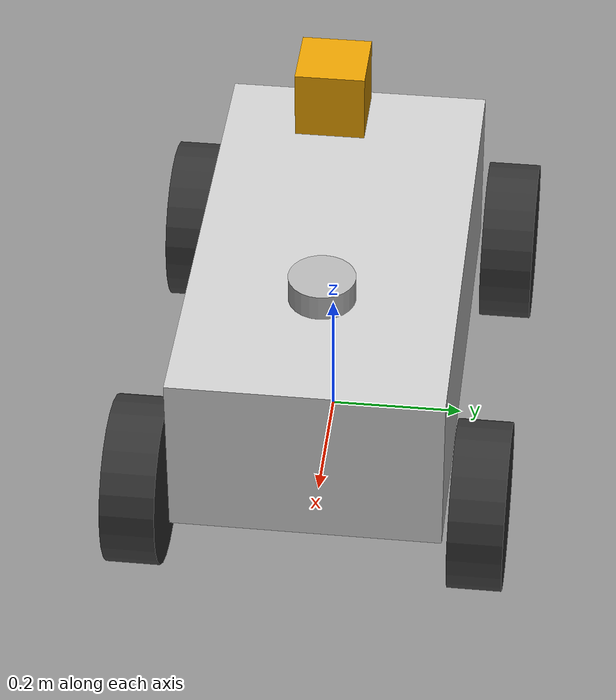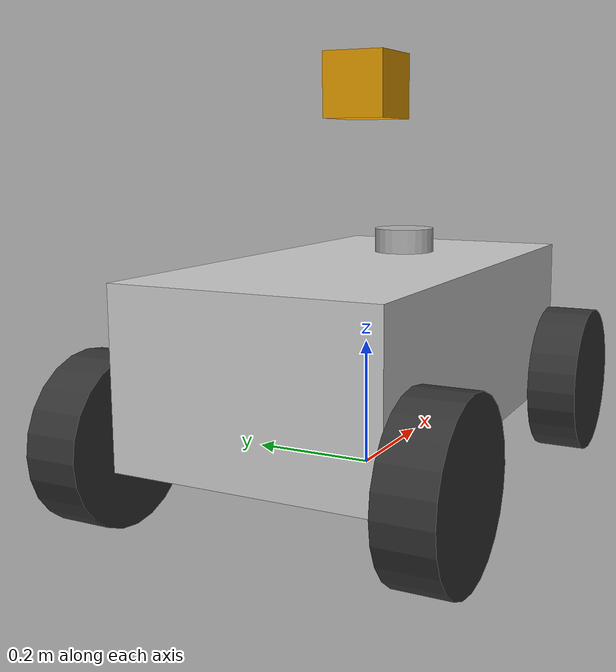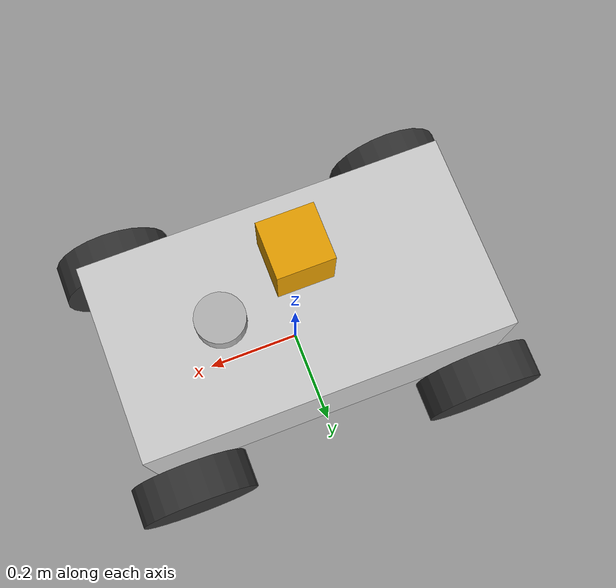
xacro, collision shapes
<?xml version="1.0"?>
<robot xmlns:xacro="http://www.ros.org/wiki/xacro" name="d4zbot">

    <!-- INCLUDED URDF/XACRO FILES -->
    <xacro:include filename="$(find d4zbot_description)/urdf/materials.urdf.xacro"/>
    <xacro:include filename="$(find d4zbot_description)/urdf/wheel.urdf.xacro"/>
    <xacro:include filename="$(find d4zbot_description)/urdf/base.urdf.xacro"/>
    <xacro:include filename="$(find d4zbot_description)/urdf/sensors/hokuyo.urdf.xacro"/>
    <xacro:include filename="$(find d4zbot_description)/urdf/sensors/kinect.urdf.xacro"/>
    <xacro:include filename="$(find d4zbot_description)/urdf/sensors/imu.urdf.xacro"/>

    <!-- PROPERTIES -->
    <xacro:property name="PI" value="3.14159"/>

    <!-- Extras -->
    <xacro:arg name="robot_namespace" default="$(optenv ROBOT_NAMESPACE /)" />

    <!-- D4ZBOT MACROS -->
    <xacro:d4zbot_base/>
    <xacro:d4zbot_wheel wheel_prefix="front_left" x="0.31648" y="0.25125" z="-0.10178" friction_coeff="0.6"/>
    <xacro:d4zbot_wheel wheel_prefix="front_right" x="0.31648" y="-0.25125" z="-0.10178" friction_coeff="0.6"/>
    <xacro:d4zbot_wheel wheel_prefix="rear_left" x="-0.31648" y="0.25125" z="-0.10178" friction_coeff="0.15"/>
    <xacro:d4zbot_wheel wheel_prefix="rear_right" x="-0.31648" y="-0.25125" z="-0.10178" friction_coeff="0.15"/>
    <xacro:d4zbot_hokuyo/>
    <xacro:d4zbot_kinect/>
    <xacro:d4zbot_imu/>

    <!-- PLUGINS -->
    <gazebo>
        <plugin name="gazebo_ros_control" filename="libgazebo_ros_control.so">
          <robotNamespace>$(arg robot_namespace)</robotNamespace>
          <legacyModeNS>true</legacyModeNS>
        </plugin>
    </gazebo>

</robot>

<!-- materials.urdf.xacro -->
<robot xmlns:xacro="http://www.ros.org/wiki/xacro">

    <material name="dark_grey"><color rgba="0.2 0.2 0.2 1.0" /></material>
    <material name="medium_grey"><color rgba="0.6 0.6 0.6 1.0" /></material>
    <material name="light_grey"><color rgba="0.8 0.8 0.8 1.0" /></material>
    <material name="yellow"><color rgba="0.8 0.8 0.0 1.0" /></material>
    <material name="black"><color rgba="0.15 0.15 0.15 1.0" /></material>
    <material name="white"><color rgba="1.0 1.0 1.0 1.0" /></material>
    <material name="red"><color rgba="1.0 0.0 0.0 1.0" /></material>

</robot>

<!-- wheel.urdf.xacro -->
<robot xmlns:xacro="http://www.ros.org/wiki/xacro" name="d4zbot_wheel">

    <xacro:macro name="d4zbot_wheel" params="wheel_prefix x y z friction_coeff">

    <!-- WHEEL LINK -->
        <link name="${wheel_prefix}_link">

            <visual>
                <origin xyz="${-x} ${-y} ${-z}" rpy="0.0 0.0 0.0"/>
                <geometry>
                    <mesh filename="package://d4zbot_description/meshes/${wheel_prefix}_wheel.STL"/>
                </geometry>
                <material name="dark_grey"/>
            </visual>

            <collision>
                <origin xyz="0 0 0" rpy="${PI/2} 0.0 0.0"/>
                <geometry>
                    <cylinder radius="0.124" length="0.08"/>
                </geometry>
            </collision>

            <inertial>
				<mass value="3.07" />
				<origin xyz="0 0 0" />
				<inertia  ixx="0.015922" ixy="0" ixz="0" iyy="0.028794" iyz="0" izz="0.015922" />
			</inertial>
    </link>

    <!-- JOINT -->
    <joint name="${wheel_prefix}_joint" type="continuous">
        <parent link="base_link"/>
        <child link="${wheel_prefix}_link"/>
        <axis xyz="0 1 0" rpy="0 0 0" />
        <origin xyz="${x} ${y} ${z}" rpy="0.0 0.0 0.0"/>
    </joint>

    <!-- GAZEBO -->
    <gazebo reference="${wheel_prefix}_link">
        <mu1 value="${friction_coeff}"/>
        <mu2 value="${friction_coeff}"/>
        <kp value="10000000.0" />
        <kd value="1.0" />
        <fdir1 value="1 0 0"/>
        <material>
            Gazebo/DarkGrey
        </material>
    </gazebo>

    <!-- TRANSMISSION -->
    <transmission name="${wheel_prefix}_wheel_trans" type="SimpleTransmission">
        <type>transmission_interface/SimpleTransmission</type>
        <actuator name="${wheel_prefix}_wheel_motor">
            <mechanicalReduction>1</mechanicalReduction>
        </actuator>
        <joint name="${wheel_prefix}_joint">
            <hardwareInterface>hardware_interface/VelocityJointInterface</hardwareInterface>
        </joint>
    </transmission>

    </xacro:macro>

</robot>

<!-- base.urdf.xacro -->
<robot xmlns:xacro="http://www.ros.org/wiki/xacro" name="d4zbot_base">

    <xacro:macro name="d4zbot_base">

        <!-- BASE FOOTPRINT -->
        <link name="base_footprint"/>

        <joint name="base_footprint_joint" type="fixed">
            <origin xyz="0 0 0.2" rpy="0 0 0" />
            <parent link="base_footprint" />
            <child link="base_link" />
        </joint>

        <!-- BASE LINK -->
        <link name="base_link">
            <visual>
                <origin xyz="0 0 0" rpy="0 0 0" />
                <geometry>
                    <mesh filename="package://d4zbot_description/meshes/base_link.STL" />
                </geometry>
                <material name="light_grey"/>
            </visual>
            <collision>
                <origin xyz="0 0 0" rpy="0 0 0" />
                <geometry>
                    <box size="0.75 0.4 0.26"/>
                </geometry>
            </collision>
        </link>

        <!-- INERTIAL LINK -->
        <link name="inertial_link">
            <inertial>
                <mass value="6.89" />
                <origin xyz="0 0 0" />
                <inertia ixx="0.018" ixy="0" ixz="0" iyy="0.026" iyz="0" izz="0.026" />
            </inertial>
        </link>

        <!-- INERTIAL JOINT -->
        <joint name="inertial_joint" type="fixed">
            <origin xyz="0 0 0" rpy="0 0 0" />
            <parent link="base_link" />
            <child link="inertial_link" />
        </joint>

        <!-- GAZEBO -->
        <gazebo reference="base_link">
            <material>
                Gazebo/LightGrey
            </material>
            <turnGavityOff>false</turnGavityOff>
        </gazebo>

    </xacro:macro>
</robot>

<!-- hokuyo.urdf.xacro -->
<robot xmlns:xacro="http://ros.org/wiki/xacro" name="d4zbot_hokuyo">

    <xacro:macro name="d4zbot_hokuyo">

        <!-- Hokuyo Laser -->
        <link name="hokuyo_link">
            <visual>
                <origin xyz="0 0 0" rpy="0 0 0"/>
                <geometry>
                    <mesh filename="package://d4zbot_description/meshes/sensors/hokuyo.dae"/>
                </geometry>
            </visual>

            <collision>
                <origin xyz="0 0 0" rpy="0 0 0"/>
                <geometry>
                    <cylinder radius="0.05" length="0.04"/>
                </geometry>
            </collision>

            <inertial>
                <mass value="0.2" />
                <origin xyz="0 0 0" rpy="0 0 0"/>
                <inertia ixx="1e-6" ixy="0" ixz="0" iyy="1e-6" iyz="0" izz="1e-6" />
            </inertial>
        </link>

        <joint name="hokuyo_joint" type="fixed">
            <axis xyz="0 1 0" />
            <origin xyz="0.15 0 0.15" rpy="0 0 0"/>
            <parent link="base_link"/>
            <child link="hokuyo_link"/>
        </joint>

        <!-- hokuyo -->
        <gazebo reference="hokuyo_link">
            <turnGravitiOff>true</turnGravitiOff>
            <sensor type="ray" name="head_hokuyo_sensor">
            <pose>0 0 0 0 0 0</pose>
                <visualize>false</visualize>
                <update_rate>50</update_rate>
                <ray>
                    <scan>
                        <horizontal>
                            <samples>720</samples>
                            <min_angle>-2.35619</min_angle>
                            <max_angle>2.35619</max_angle>
                            <resolution>1</resolution>
                        </horizontal>
                    </scan>
                    <range>
                        <min>0.4</min>
                        <max>30.0</max>
                        <resolution>0.01</resolution>
                    </range>
                    <noise>
                        <type>gaussian</type>
                        <mean>0.0</mean>
                        <stddev>0.001</stddev>
                    </noise>
                </ray>
                <plugin name="gazebo_ros_laser_controller" filename="libgazebo_ros_laser.so">
                    <topicName>scan</topicName>
                    <frameName>hokuyo_link</frameName>
                </plugin>
            </sensor>
        </gazebo>

    </xacro:macro>
</robot>

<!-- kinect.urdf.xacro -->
<robot xmlns:xacro="http://www.ros.org/wiki/xacro" name="d4zbot_kinect">
    <xacro:macro name="d4zbot_kinect">

    <!-- Camera -->
    <link name="camera_link">
        <collision>
            <origin xyz="0 0 0" rpy="0 0 0"/>
            <geometry>
                <box size="0.1 0.1 0.1"/>
            </geometry>
        </collision>

        <visual>
            <origin xyz="0 0 0" rpy="0 0 0"/>
            <geometry>
                <mesh filename="package://d4zbot_description/meshes/sensors/kinect.dae"/>
            </geometry>
        </visual>

        <inertial>
            <mass value="0.5" />
            <origin xyz="0 0 0" rpy="0 0 0"/>
            <inertia ixx="1e-6" ixy="0" ixz="0" iyy="1e-6" iyz="0" izz="1e-6" />
        </inertial>
    </link>

    <joint name="camera_joint" type="fixed">
        <axis xyz="0 1 0" />
        <origin xyz="0.0 0.0 0.4" rpy="0 0 0"/>
        <parent link="base_link"/>
        <child link="camera_link"/>
    </joint>

    <!-- camera -->
    <gazebo reference="camera_link">
        <sensor type="camera" name="camera1">
            <update_rate>30.0</update_rate>
            <camera name="head">
                <horizontal_fov>1.3962634</horizontal_fov>
                <image>
                    <width>800</width>
                    <height>800</height>
                    <format>R8G8B8</format>
                </image>
                <clip>
                <near>0.02</near>
                <far>300</far>
                </clip>
                <noise>
                    <type>gaussian</type>
                    <mean>0.0</mean>
                    <stddev>0.007</stddev>
                </noise>
            </camera>

            <plugin name="gazebo_ros_camera_controller" filename="libgazebo_ros_camera.so">
                <alwaysOn>true</alwaysOn>
                <updateRate>0.0</updateRate>
                <cameraName>d4zbot/camera1</cameraName>
                <imageTopicName>image_raw</imageTopicName>
                <cameraInfoTopicName>camera_info</cameraInfoTopicName>
                <frameName>camera_link</frameName>
                <hackBaseline>0.07</hackBaseline>
                <distortionK1>0.0</distortionK1>
                <distortionK2>0.0</distortionK2>
                <distortionK3>0.0</distortionK3>
                <distortionT1>0.0</distortionT1>
                <distortionT2>0.0</distortionT2>
            </plugin>
        </sensor>
    </gazebo>

    </xacro:macro>
</robot>

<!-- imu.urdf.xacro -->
<robot xmlns:xacro="http://www.ros.org/wiki/xacro" name="d4zbot_imu">

    <xacro:macro name="d4zbot_imu">

        <!-- Imu link -->
        <link name="imu_link">
            <inertial>
                <mass value="0.05"/>
                <origin rpy="0 0 0" xyz="0 0 0"/>
                <inertia ixx="0.0001" ixy="0" ixz="0" iyy="0.000001" iyz="0" izz="0.0001"/>
            </inertial>

            <visual>
                <origin rpy="0 0 0" xyz="0 0 0"/>
                <geometry>
                    <mesh filename="package://d4zbot_description/meshes/sensors/imu.dae"/>
                </geometry>
            </visual>

            <collision>
                <origin rpy="0 0 0" xyz="0 0 0"/>
                <geometry>
                    <box size="0.01 0.01 0.01"/>
                </geometry>
            </collision>
        </link>

        <!-- Imu is fixed to the base link -->
        <joint name="imu_joint" type="fixed">
            <origin xyz="0.0 0.0 0.01" rpy="0 0 0"/>
            <parent link="base_link"/>
            <child link="imu_link"/>
        </joint>

        <gazebo reference="imu_link">
            <material>Gazebo/Orange</material>
        </gazebo>

        <gazebo reference="imu_joint">
            <disableFixedJointLumping>true</disableFixedJointLumping>
        </gazebo>

        <gazebo>
            <plugin name="gazebo_ros_imu_controller" filename="libhector_gazebo_ros_imu.so">
              <updateRate>400</updateRate>
              <bodyName>imu_link</bodyName>
              <frameId>imu_link</frameId>
              <topicName>/d4zbot/imu0</topicName>
              <serviceName>/imu/calibrate</serviceName>
              <accelOffset>0.0 0.0 0.0</accelOffset>
              <accelDrift>0.0 0.0 0.0</accelDrift>
              <accelDriftFrequency>0.0 0.0 0.0</accelDriftFrequency>
              <accelGaussianNoise>0.0 0.0 0.0</accelGaussianNoise>
              <rateOffset>0.0 0.0 0.0</rateOffset>
              <rateDrift>0.0 0.0 0.0</rateDrift>
              <rateDriftFrequency>0.0 0.0 0.0</rateDriftFrequency>
              <rateGaussianNoise>0.0 0.0 0.0</rateGaussianNoise>
              <headingOffset>0</headingOffset>
              <headingDrift>0</headingDrift>
              <headingDriftFrequency>0</headingDriftFrequency>
              <headingGaussianNoise>0</headingGaussianNoise>
            </plugin>
          </gazebo>
    </xacro:macro>
</robot>
